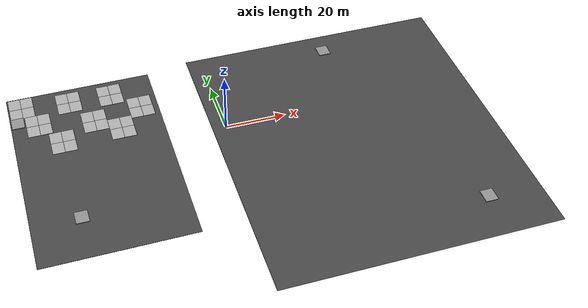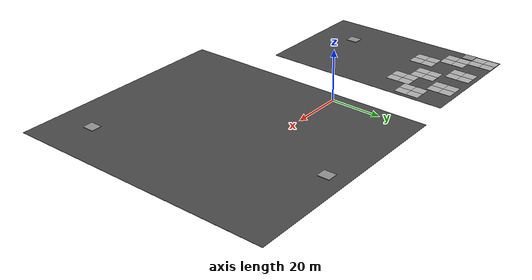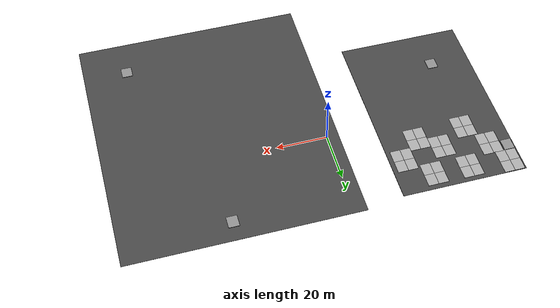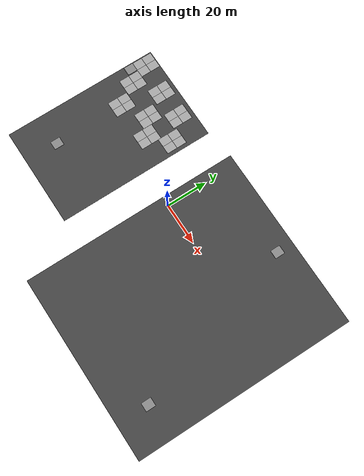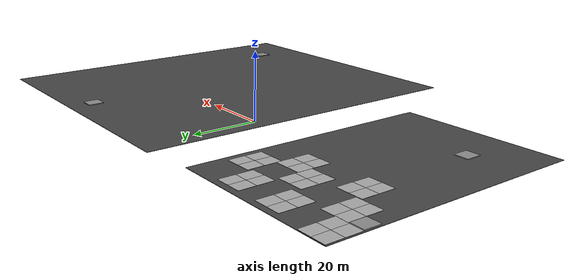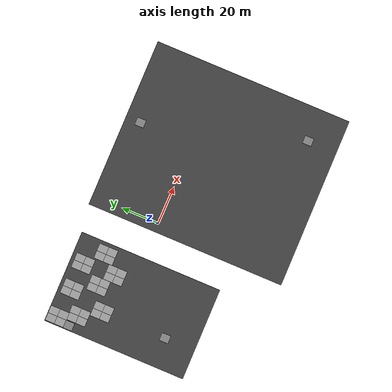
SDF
<sdf version="1.6">
 <world name="default">
  <light name="sun" type="directional">
   <pose>0 0 10 0 -0 0</pose>
   <diffuse>0.8 0.8 0.8 1</diffuse>
   <specular>0.2 0.2 0.2 1</specular>
   <attenuation>
    <range>1000</range>
    <constant>0.9</constant>
    <linear>0.01</linear>
    <quadratic>0.001</quadratic>
   </attenuation>
   <direction>-0.5 0.1 -0.9</direction>
  </light>
  <gravity>0 0 -9.8</gravity>
  <magnetic_field>6e-06 2.3e-05 -4.2e-05</magnetic_field>
  <atmosphere type="adiabatic"/>
  <physics name="default_physics" default="0" type="ode">
   <gravity>0 0 -9.8066</gravity>
   <ode>
    <solver>
     <type>quick</type>
     <iters>10</iters>
     <sor>1.3</sor>
     <use_dynamic_moi_rescaling>0</use_dynamic_moi_rescaling>
    </solver>
    <constraints>
     <cfm>0</cfm>
     <erp>0.2</erp>
     <contact_max_correcting_vel>100</contact_max_correcting_vel>
     <contact_surface_layer>0.001</contact_surface_layer>
    </constraints>
   </ode>
   <max_step_size>0.004</max_step_size>
   <real_time_factor>1</real_time_factor>
   <real_time_update_rate>250</real_time_update_rate>
   <magnetic_field>6.0e-6 2.3e-5 -4.2e-5</magnetic_field>
  </physics>
  <scene><ambient>0.4 0.4 0.4 1</ambient><background>0.7 0.7 0.7 1</background><shadows>1</shadows></scene>
  <spherical_coordinates>
   <surface_model>EARTH_WGS84</surface_model>
   <latitude_deg>0</latitude_deg>
   <longitude_deg>0</longitude_deg>
   <elevation>0</elevation>
   <heading_deg>0</heading_deg>
  </spherical_coordinates>
  <model name="asphalt_plane">
   <static>1</static>
   <link name="link">
    <collision name="collision"><geometry><box><size>89.903 105.609 0.1</size></box></geometry></collision>
    <visual name="visual">
     <cast_shadows>0</cast_shadows>
     <geometry><box><size>89.903 105.609 0.1</size></box></geometry>
     <material>
      <script>
       <uri>model://asphalt_plane/materials/scripts</uri>
       <uri>model://asphalt_plane/materials/textures</uri>
       <name>vrc/asphalt</name>
      </script>
     </material>
    </visual>
   </link>
   <pose>40.3257 -16.3633 0 0 -0 0</pose>
  </model>
  <model name="unit_box">
   <pose>43.6321 28.4576 0.161859 2e-06 -0 0.000625</pose>
   <link name="link">
    <inertial>
     <mass>1</mass>
     <inertia>
      <ixx>0.166667</ixx>
      <ixy>0</ixy>
      <ixz>0</ixz>
      <iyy>0.166667</iyy>
      <iyz>0</iyz>
      <izz>0.166667</izz>
     </inertia>
    </inertial>
    <collision name="collision"><geometry><box><size>4.13216 4.71201 0.223728</size></box></geometry></collision>
    <visual name="visual">
     <geometry><box><size>4.13216 4.71201 0.223728</size></box></geometry>
     <material>
      <script><name>Gazebo/Grey</name><uri>file://media/materials/scripts/gazebo.material</uri></script>
     </material>
    </visual>
   </link>
  </model>
  <model name="asphalt_plane_0">
   <static>1</static>
   <link name="link">
    <collision name="collision"><geometry><box><size>48.4228 75.7826 0.1</size></box></geometry></collision>
    <visual name="visual">
     <cast_shadows>0</cast_shadows>
     <geometry><box><size>48.4228 75.7826 0.1</size></box></geometry>
     <material>
      <script>
       <uri>model://asphalt_plane/materials/scripts</uri>
       <uri>model://asphalt_plane/materials/textures</uri>
       <name>vrc/asphalt</name>
      </script>
     </material>
    </visual>
   </link>
   <pose>-43.199 -3.77975 0 0 -0 0</pose>
  </model>
  <model name="mud_box">
   <static>1</static>
   <link name="link">
    <collision name="collision"><geometry><box><size>8 10 0.2</size></box></geometry></collision>
    <visual name="visual_1">
     <pose>-2 2.5 0 0 -0 0</pose>
     <cast_shadows>0</cast_shadows>
     <geometry><box><size>4 5 0.2</size></box></geometry>
     <material>
      <script>
       <uri>model://mud_box/materials/scripts</uri>
       <uri>model://mud_box/materials/textures</uri>
       <name>vrc/mud</name>
      </script>
     </material>
    </visual>
    <visual name="visual_2">
     <pose>2 2.5 0 0 -0 0</pose>
     <cast_shadows>0</cast_shadows>
     <geometry><box><size>4 5 0.2</size></box></geometry>
     <material>
      <script>
       <uri>model://mud_box/materials/scripts</uri>
       <uri>model://mud_box/materials/textures</uri>
       <name>vrc/mud</name>
      </script>
     </material>
    </visual>
    <visual name="visual_3">
     <pose>2 -2.5 0 0 -0 0</pose>
     <cast_shadows>0</cast_shadows>
     <geometry><box><size>4 5 0.2</size></box></geometry>
     <material>
      <script>
       <uri>model://mud_box/materials/scripts</uri>
       <uri>model://mud_box/materials/textures</uri>
       <name>vrc/mud</name>
      </script>
     </material>
    </visual>
    <visual name="visual_4">
     <pose>-2 -2.5 0 0 -0 0</pose>
     <cast_shadows>0</cast_shadows>
     <geometry><box><size>4 5 0.2</size></box></geometry>
     <material>
      <script>
       <uri>model://mud_box/materials/scripts</uri>
       <uri>model://mud_box/materials/textures</uri>
       <name>vrc/mud</name>
      </script>
     </material>
    </visual>
   </link>
   <pose>-33.4315 27.2501 0 0 -0 0</pose>
  </model>
  <model name="mud_box_clone">
   <static>1</static>
   <link name="link">
    <collision name="collision"><geometry><box><size>8 10 0.2</size></box></geometry></collision>
    <visual name="visual_1">
     <pose>-2 2.5 0 0 -0 0</pose>
     <cast_shadows>0</cast_shadows>
     <geometry><box><size>4 5 0.2</size></box></geometry>
     <material>
      <script>
       <uri>model://mud_box/materials/scripts</uri>
       <uri>model://mud_box/materials/textures</uri>
       <name>vrc/mud</name>
      </script>
     </material>
    </visual>
    <visual name="visual_2">
     <pose>2 2.5 0 0 -0 0</pose>
     <cast_shadows>0</cast_shadows>
     <geometry><box><size>4 5 0.2</size></box></geometry>
     <material>
      <script>
       <uri>model://mud_box/materials/scripts</uri>
       <uri>model://mud_box/materials/textures</uri>
       <name>vrc/mud</name>
      </script>
     </material>
    </visual>
    <visual name="visual_3">
     <pose>2 -2.5 0 0 -0 0</pose>
     <cast_shadows>0</cast_shadows>
     <geometry><box><size>4 5 0.2</size></box></geometry>
     <material>
      <script>
       <uri>model://mud_box/materials/scripts</uri>
       <uri>model://mud_box/materials/textures</uri>
       <name>vrc/mud</name>
      </script>
     </material>
    </visual>
    <visual name="visual_4">
     <pose>-2 -2.5 0 0 -0 0</pose>
     <cast_shadows>0</cast_shadows>
     <geometry><box><size>4 5 0.2</size></box></geometry>
     <material>
      <script>
       <uri>model://mud_box/materials/scripts</uri>
       <uri>model://mud_box/materials/textures</uri>
       <name>vrc/mud</name>
      </script>
     </material>
    </visual>
   </link>
   <pose>-40.696 15.8234 0 0 -0 0</pose>
  </model>
  <model name="mud_box_clone_0">
   <static>1</static>
   <link name="link">
    <collision name="collision"><geometry><box><size>8 10 0.2</size></box></geometry></collision>
    <visual name="visual_1">
     <pose>-2 2.5 0 0 -0 0</pose>
     <cast_shadows>0</cast_shadows>
     <geometry><box><size>4 5 0.2</size></box></geometry>
     <material>
      <script>
       <uri>model://mud_box/materials/scripts</uri>
       <uri>model://mud_box/materials/textures</uri>
       <name>vrc/mud</name>
      </script>
     </material>
    </visual>
    <visual name="visual_2">
     <pose>2 2.5 0 0 -0 0</pose>
     <cast_shadows>0</cast_shadows>
     <geometry><box><size>4 5 0.2</size></box></geometry>
     <material>
      <script>
       <uri>model://mud_box/materials/scripts</uri>
       <uri>model://mud_box/materials/textures</uri>
       <name>vrc/mud</name>
      </script>
     </material>
    </visual>
    <visual name="visual_3">
     <pose>2 -2.5 0 0 -0 0</pose>
     <cast_shadows>0</cast_shadows>
     <geometry><box><size>4 5 0.2</size></box></geometry>
     <material>
      <script>
       <uri>model://mud_box/materials/scripts</uri>
       <uri>model://mud_box/materials/textures</uri>
       <name>vrc/mud</name>
      </script>
     </material>
    </visual>
    <visual name="visual_4">
     <pose>-2 -2.5 0 0 -0 0</pose>
     <cast_shadows>0</cast_shadows>
     <geometry><box><size>4 5 0.2</size></box></geometry>
     <material>
      <script>
       <uri>model://mud_box/materials/scripts</uri>
       <uri>model://mud_box/materials/textures</uri>
       <name>vrc/mud</name>
      </script>
     </material>
    </visual>
   </link>
   <pose>-32.6647 10.0213 0 0 -0 0</pose>
  </model>
  <model name="mud_box_clone_1">
   <static>1</static>
   <link name="link">
    <collision name="collision"><geometry><box><size>8 10 0.2</size></box></geometry></collision>
    <visual name="visual_1">
     <pose>-2 2.5 0 0 -0 0</pose>
     <cast_shadows>0</cast_shadows>
     <geometry><box><size>4 5 0.2</size></box></geometry>
     <material>
      <script>
       <uri>model://mud_box/materials/scripts</uri>
       <uri>model://mud_box/materials/textures</uri>
       <name>vrc/mud</name>
      </script>
     </material>
    </visual>
    <visual name="visual_2">
     <pose>2 2.5 0 0 -0 0</pose>
     <cast_shadows>0</cast_shadows>
     <geometry><box><size>4 5 0.2</size></box></geometry>
     <material>
      <script>
       <uri>model://mud_box/materials/scripts</uri>
       <uri>model://mud_box/materials/textures</uri>
       <name>vrc/mud</name>
      </script>
     </material>
    </visual>
    <visual name="visual_3">
     <pose>2 -2.5 0 0 -0 0</pose>
     <cast_shadows>0</cast_shadows>
     <geometry><box><size>4 5 0.2</size></box></geometry>
     <material>
      <script>
       <uri>model://mud_box/materials/scripts</uri>
       <uri>model://mud_box/materials/textures</uri>
       <name>vrc/mud</name>
      </script>
     </material>
    </visual>
    <visual name="visual_4">
     <pose>-2 -2.5 0 0 -0 0</pose>
     <cast_shadows>0</cast_shadows>
     <geometry><box><size>4 5 0.2</size></box></geometry>
     <material>
      <script>
       <uri>model://mud_box/materials/scripts</uri>
       <uri>model://mud_box/materials/textures</uri>
       <name>vrc/mud</name>
      </script>
     </material>
    </visual>
   </link>
   <pose>-24.6995 18.4534 0 0 -0 0</pose>
  </model>
  <model name="mud_box_clone_2">
   <static>1</static>
   <link name="link">
    <collision name="collision"><geometry><box><size>8 10 0.2</size></box></geometry></collision>
    <visual name="visual_1">
     <pose>-2 2.5 0 0 -0 0</pose>
     <cast_shadows>0</cast_shadows>
     <geometry><box><size>4 5 0.2</size></box></geometry>
     <material>
      <script>
       <uri>model://mud_box/materials/scripts</uri>
       <uri>model://mud_box/materials/textures</uri>
       <name>vrc/mud</name>
      </script>
     </material>
    </visual>
    <visual name="visual_2">
     <pose>2 2.5 0 0 -0 0</pose>
     <cast_shadows>0</cast_shadows>
     <geometry><box><size>4 5 0.2</size></box></geometry>
     <material>
      <script>
       <uri>model://mud_box/materials/scripts</uri>
       <uri>model://mud_box/materials/textures</uri>
       <name>vrc/mud</name>
      </script>
     </material>
    </visual>
    <visual name="visual_3">
     <pose>2 -2.5 0 0 -0 0</pose>
     <cast_shadows>0</cast_shadows>
     <geometry><box><size>4 5 0.2</size></box></geometry>
     <material>
      <script>
       <uri>model://mud_box/materials/scripts</uri>
       <uri>model://mud_box/materials/textures</uri>
       <name>vrc/mud</name>
      </script>
     </material>
    </visual>
    <visual name="visual_4">
     <pose>-2 -2.5 0 0 -0 0</pose>
     <cast_shadows>0</cast_shadows>
     <geometry><box><size>4 5 0.2</size></box></geometry>
     <material>
      <script>
       <uri>model://mud_box/materials/scripts</uri>
       <uri>model://mud_box/materials/textures</uri>
       <name>vrc/mud</name>
      </script>
     </material>
    </visual>
   </link>
   <pose>-47.4664 27.3674 0 0 -0 0</pose>
  </model>
  <model name="mud_box_clone_3">
   <static>1</static>
   <link name="link">
    <collision name="collision"><geometry><box><size>8 10 0.2</size></box></geometry></collision>
    <visual name="visual_1">
     <pose>-2 2.5 0 0 -0 0</pose>
     <cast_shadows>0</cast_shadows>
     <geometry><box><size>4 5 0.2</size></box></geometry>
     <material>
      <script>
       <uri>model://mud_box/materials/scripts</uri>
       <uri>model://mud_box/materials/textures</uri>
       <name>vrc/mud</name>
      </script>
     </material>
    </visual>
    <visual name="visual_2">
     <pose>2 2.5 0 0 -0 0</pose>
     <cast_shadows>0</cast_shadows>
     <geometry><box><size>4 5 0.2</size></box></geometry>
     <material>
      <script>
       <uri>model://mud_box/materials/scripts</uri>
       <uri>model://mud_box/materials/textures</uri>
       <name>vrc/mud</name>
      </script>
     </material>
    </visual>
    <visual name="visual_3">
     <pose>2 -2.5 0 0 -0 0</pose>
     <cast_shadows>0</cast_shadows>
     <geometry><box><size>4 5 0.2</size></box></geometry>
     <material>
      <script>
       <uri>model://mud_box/materials/scripts</uri>
       <uri>model://mud_box/materials/textures</uri>
       <name>vrc/mud</name>
      </script>
     </material>
    </visual>
    <visual name="visual_4">
     <pose>-2 -2.5 0 0 -0 0</pose>
     <cast_shadows>0</cast_shadows>
     <geometry><box><size>4 5 0.2</size></box></geometry>
     <material>
      <script>
       <uri>model://mud_box/materials/scripts</uri>
       <uri>model://mud_box/materials/textures</uri>
       <name>vrc/mud</name>
      </script>
     </material>
    </visual>
   </link>
   <pose>-52.1183 8.88595 0 0 -0 0</pose>
  </model>
  <model name="mud_box_clone_4">
   <static>1</static>
   <link name="link">
    <collision name="collision"><geometry><box><size>8 10 0.2</size></box></geometry></collision>
    <visual name="visual_1">
     <pose>-2 2.5 0 0 -0 0</pose>
     <cast_shadows>0</cast_shadows>
     <geometry><box><size>4 5 0.2</size></box></geometry>
     <material>
      <script>
       <uri>model://mud_box/materials/scripts</uri>
       <uri>model://mud_box/materials/textures</uri>
       <name>vrc/mud</name>
      </script>
     </material>
    </visual>
    <visual name="visual_2">
     <pose>2 2.5 0 0 -0 0</pose>
     <cast_shadows>0</cast_shadows>
     <geometry><box><size>4 5 0.2</size></box></geometry>
     <material>
      <script>
       <uri>model://mud_box/materials/scripts</uri>
       <uri>model://mud_box/materials/textures</uri>
       <name>vrc/mud</name>
      </script>
     </material>
    </visual>
    <visual name="visual_3">
     <pose>2 -2.5 0 0 -0 0</pose>
     <cast_shadows>0</cast_shadows>
     <geometry><box><size>4 5 0.2</size></box></geometry>
     <material>
      <script>
       <uri>model://mud_box/materials/scripts</uri>
       <uri>model://mud_box/materials/textures</uri>
       <name>vrc/mud</name>
      </script>
     </material>
    </visual>
    <visual name="visual_4">
     <pose>-2 -2.5 0 0 -0 0</pose>
     <cast_shadows>0</cast_shadows>
     <geometry><box><size>4 5 0.2</size></box></geometry>
     <material>
      <script>
       <uri>model://mud_box/materials/scripts</uri>
       <uri>model://mud_box/materials/textures</uri>
       <name>vrc/mud</name>
      </script>
     </material>
    </visual>
   </link>
   <pose>-58.5772 19.0945 0 0 -0 0</pose>
  </model>
  <model name="mud_box_clone_5">
   <static>1</static>
   <link name="link">
    <collision name="collision"><geometry><box><size>8 10 0.2</size></box></geometry></collision>
    <visual name="visual_1">
     <pose>-2 2.5 0 0 -0 0</pose>
     <cast_shadows>0</cast_shadows>
     <geometry><box><size>4 5 0.2</size></box></geometry>
     <material>
      <script>
       <uri>model://mud_box/materials/scripts</uri>
       <uri>model://mud_box/materials/textures</uri>
       <name>vrc/mud</name>
      </script>
     </material>
    </visual>
    <visual name="visual_2">
     <pose>2 2.5 0 0 -0 0</pose>
     <cast_shadows>0</cast_shadows>
     <geometry><box><size>4 5 0.2</size></box></geometry>
     <material>
      <script>
       <uri>model://mud_box/materials/scripts</uri>
       <uri>model://mud_box/materials/textures</uri>
       <name>vrc/mud</name>
      </script>
     </material>
    </visual>
    <visual name="visual_3">
     <pose>2 -2.5 0 0 -0 0</pose>
     <cast_shadows>0</cast_shadows>
     <geometry><box><size>4 5 0.2</size></box></geometry>
     <material>
      <script>
       <uri>model://mud_box/materials/scripts</uri>
       <uri>model://mud_box/materials/textures</uri>
       <name>vrc/mud</name>
      </script>
     </material>
    </visual>
    <visual name="visual_4">
     <pose>-2 -2.5 0 0 -0 0</pose>
     <cast_shadows>0</cast_shadows>
     <geometry><box><size>4 5 0.2</size></box></geometry>
     <material>
      <script>
       <uri>model://mud_box/materials/scripts</uri>
       <uri>model://mud_box/materials/textures</uri>
       <name>vrc/mud</name>
      </script>
     </material>
    </visual>
   </link>
   <pose>-62.9994 28.9039 0 0 -0 0</pose>
  </model>
  <model name="unit_box_clone">
   <pose>-64.9908 21.6917 0.187659 0.010944 -9e-06 0.000803</pose>
   <link name="link">
    <inertial>
     <mass>1</mass>
     <inertia>
      <ixx>0.166667</ixx>
      <ixy>0</ixy>
      <ixz>0</ixz>
      <iyy>0.166667</iyy>
      <iyz>0</iyz>
      <izz>0.166667</izz>
     </inertia>
    </inertial>
    <collision name="collision"><geometry><box><size>4.13216 4.71201 0.223728</size></box></geometry></collision>
    <visual name="visual">
     <geometry><box><size>4.13216 4.71201 0.223728</size></box></geometry>
     <material>
      <script><name>Gazebo/Grey</name><uri>file://media/materials/scripts/gazebo.material</uri></script>
     </material>
    </visual>
   </link>
  </model>
  <model name="unit_box_clone_0">
   <pose>68.079 -53.6486 0.161846 -8e-06 0 0.000633</pose>
   <link name="link">
    <inertial>
     <mass>1</mass>
     <inertia>
      <ixx>0.166667</ixx>
      <ixy>0</ixy>
      <ixz>0</ixz>
      <iyy>0.166667</iyy>
      <iyz>0</iyz>
      <izz>0.166667</izz>
     </inertia>
    </inertial>
    <collision name="collision"><geometry><box><size>4.13216 4.71201 0.223728</size></box></geometry></collision>
    <visual name="visual">
     <geometry><box><size>4.13216 4.71201 0.223728</size></box></geometry>
     <material>
      <script><name>Gazebo/Grey</name><uri>file://media/materials/scripts/gazebo.material</uri></script>
     </material>
    </visual>
   </link>
  </model>
  <model name="unit_box_clone_clone">
   <pose>-51.9287 -25.5166 0.159474 -0.001014 0 0.000315</pose>
   <link name="link">
    <inertial>
     <mass>1</mass>
     <inertia>
      <ixx>0.166667</ixx>
      <ixy>0</ixy>
      <ixz>0</ixz>
      <iyy>0.166667</iyy>
      <iyz>0</iyz>
      <izz>0.166667</izz>
     </inertia>
    </inertial>
    <collision name="collision"><geometry><box><size>4.13216 4.71201 0.223728</size></box></geometry></collision>
    <visual name="visual">
     <geometry><box><size>4.13216 4.71201 0.223728</size></box></geometry>
     <material>
      <script><name>Gazebo/Grey</name><uri>file://media/materials/scripts/gazebo.material</uri></script>
     </material>
    </visual>
   </link>
  </model>
 </world>
</sdf>
